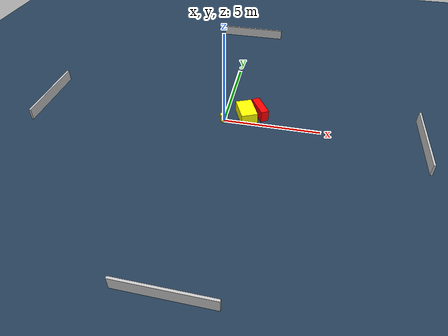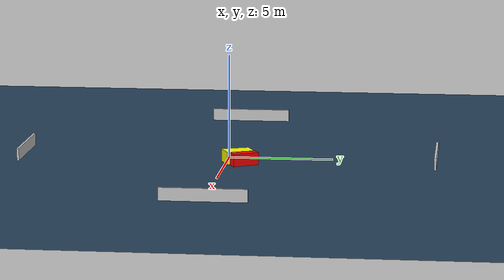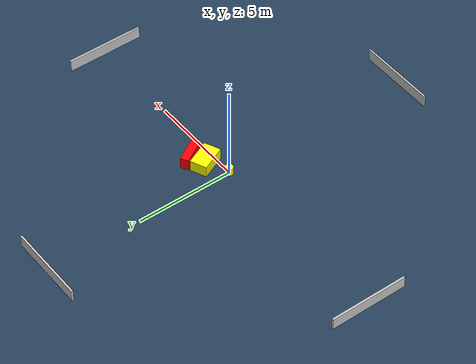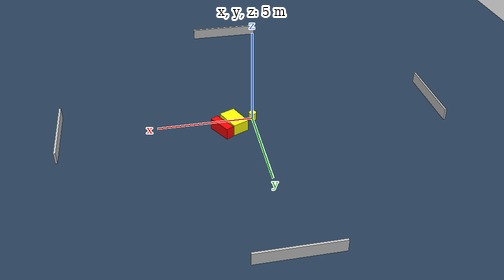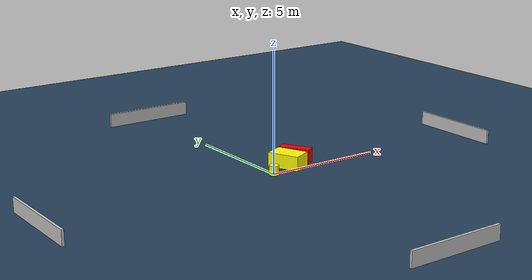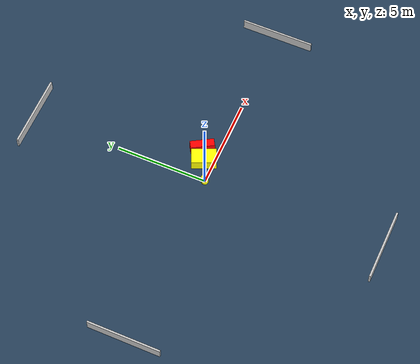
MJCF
<?xml version="1.0" ?>
<mujoco model="generated_environment">
  <option timestep="0.01" integrator="RK4" cone="elliptic"/>
  <default>
    <geom density="1"/>
  </default>
  <asset>
    <texture builtin="gradient" height="3072" name="skybox" rgb1="0.3 0.5 0.7" rgb2="0 0 0" type="skybox" width="512"/>
    <texture builtin="checker" height="300" name="groundplane" rgb1="0.2 0.3 0.4" rgb2="0.1 0.2 0.3" type="2d" width="300"/>
    <material name="groundplane" reflectance="0.2" texrepeat="5 5" texture="groundplane"/>
  </asset>
  <worldbody>
    <light dir="0 0 -1" directional="true" pos="0 0 1.5"/>
    <geom condim="3" friction="0.5 0.005 0.001" material="groundplane" name="floor" pos="0 0 0" size="0 0 0.05" type="plane"/>
    <body name="walls">
      <geom name="wall_1" condim="4" pos="-10.0 0.0 0.3" rgba="0.800000011920929 0.800000011920929 0.800000011920929 1.0" size="0.05 2.0 0.3" type="box"/>
      <geom name="wall_2" condim="4" pos="10.0 0.0 0.3" rgba="0.800000011920929 0.800000011920929 0.800000011920929 1.0" size="0.05 2.0 0.3" type="box"/>
      <geom name="wall_3" condim="4" pos="0.0 -10.0 0.3" rgba="0.800000011920929 0.800000011920929 0.800000011920929 1.0" size="2.0 0.05 0.3" type="box"/>
      <geom name="wall_4" condim="4" pos="0.0 10.0 0.3" rgba="0.800000011920929 0.800000011920929 0.800000011920929 1.0" size="2.0 0.05 0.3" type="box"/>
    </body>
    <body name="robot">
      <joint name="joint_x" type="slide" pos="0 0 0" axis="1 0 0"/>
      <joint name="joint_y" type="slide" pos="0 0 0" axis="0 1 0"/>
      <geom name="robot" type="cylinder" pos="0.0 0.0 0.2" size="0.2 0.2 0.0" mass="5.0" friction="1.0 0.005 0.0001" condim="4" rgba="1.0 1.0 0.0 1.0"/>
    </body>
    <body name="obstacle_1_movable">
      <geom name="obstacle_1_movable" condim="4" pos="1.095087291041809 0.5467040246554608 0.3" euler="0 0 293.9011278223656" friction="0.0 0.005 0.001" rgba="1.0 1.0 0.0 1.0" size="0.6738104736237764 0.4293661453933799 0.3" type="box" mass="0.1"/>
      <joint type="free"/>
    </body>
    <body name="obstacle_2_static">
      <geom name="obstacle_2_static" condim="4" pos="1.767852314325576 0.9263042803200107 0.3" euler="0 0 300.9563124271052" friction="0.0 0.005 0.001" rgba="1.0 0.0 0.0 1.0" size="0.6494479334892911 0.21503201948387968 0.3" type="box"/>
    </body>
  </worldbody>
  <actuator>
    <motor name="actuator_x" joint="joint_x" gear="1" ctrlrange="-1 1"/>
    <motor name="actuator_y" joint="joint_y" gear="1" ctrlrange="-1 1"/>
  </actuator>
</mujoco>
